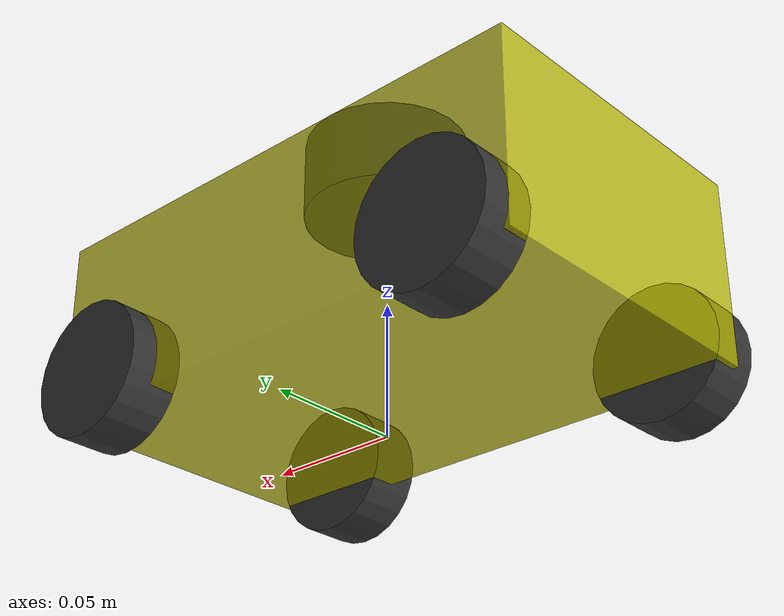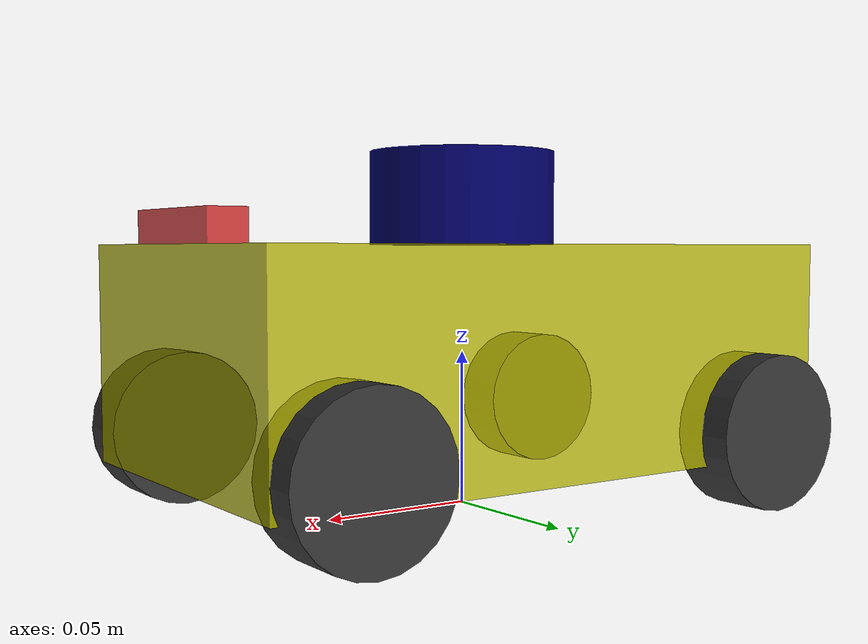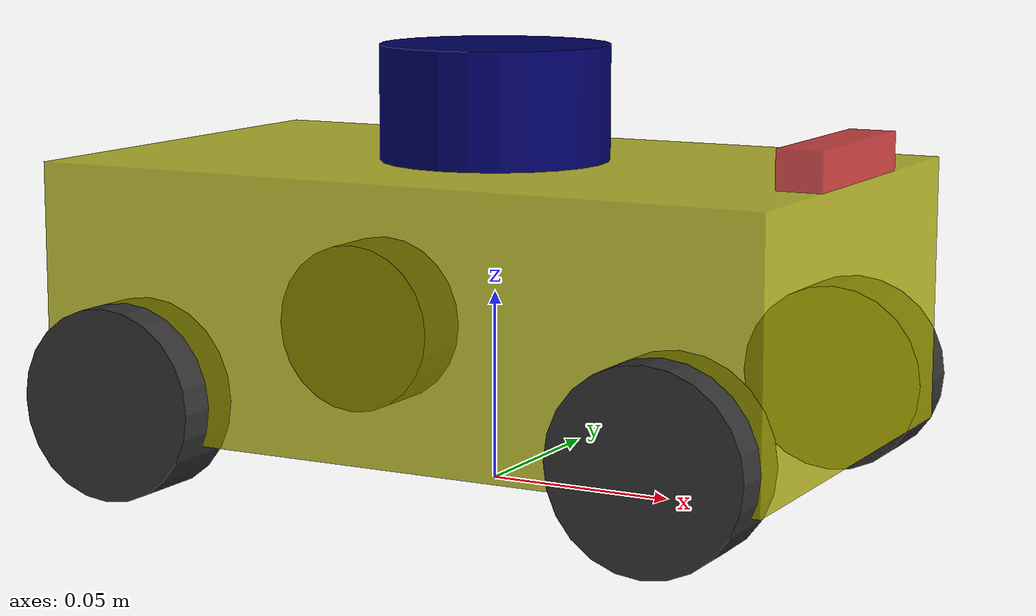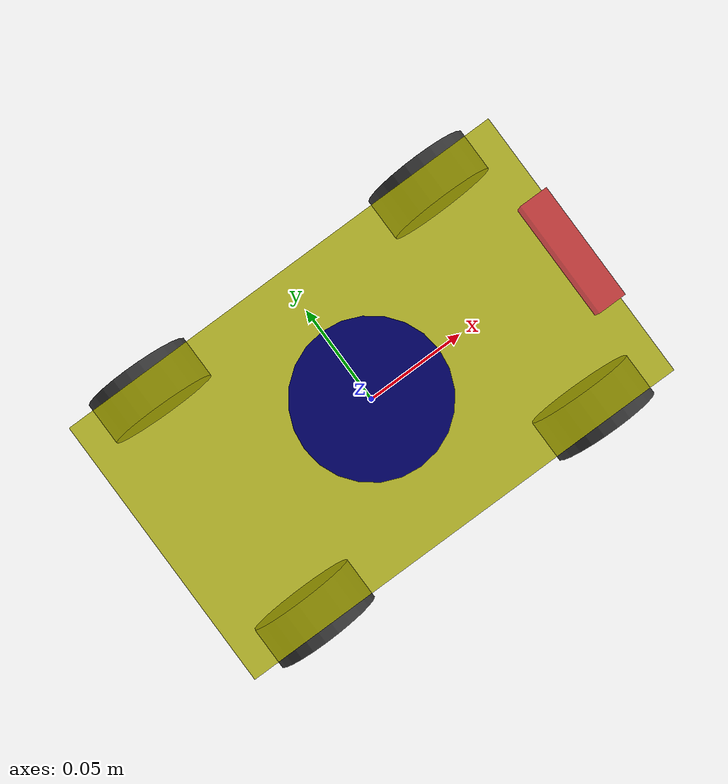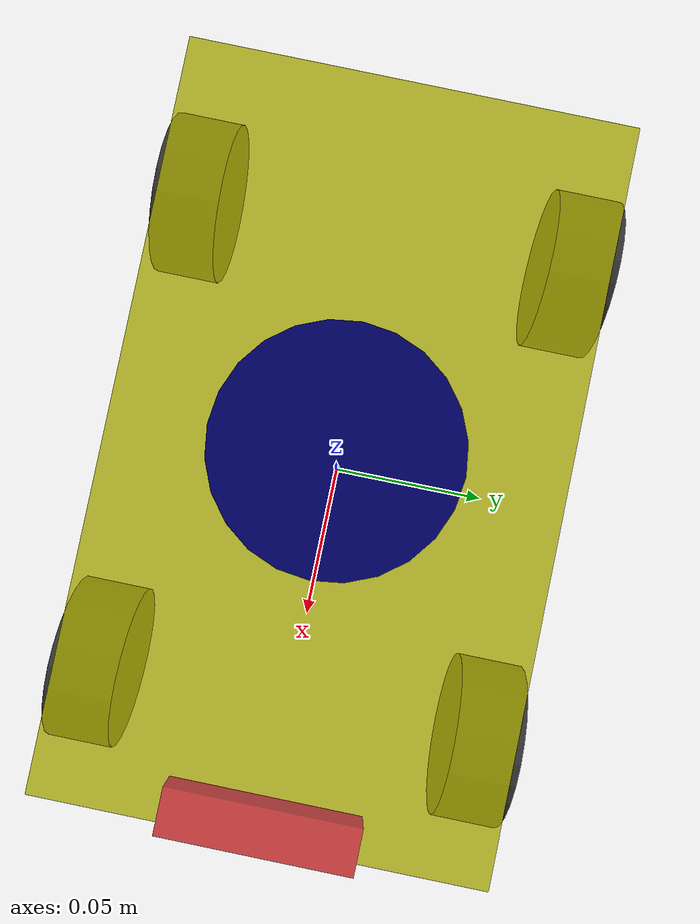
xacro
<robot name="car" xmlns:xacro="http://wiki.ros.org/xacro">
    <xacro:include filename="car_base.urdf.xacro"/>
    <xacro:include filename="car_camera.urdf.xacro"/>
    <xacro:include filename="car_laser.urdf.xacro"/>
    <xacro:include filename="move_control.urdf.xacro"/>
    <xacro:include filename="gazebo_sensor.urdf.xacro"/>
</robot>

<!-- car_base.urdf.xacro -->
<robot xmlns:xacro="http://wiki.ros.org/xacro">
    <!-- PI 值 -->
    <xacro:property name="PI" value="3.1416"/>
    <!-- 定义车辆参数 -->
    <!-- 车体长宽高 -->
    <xacro:property name="base_link_x" value="0.2"/>
    <xacro:property name="base_link_y" value="0.12"/>
    <xacro:property name="base_link_z" value="0.07"/>
    <!-- 离地间距 -->
    <xacro:property name="distance" value="0.015"/>
    <!-- 车轮半径 宽度 -->
    <xacro:property name="wheel_radius" value="0.025"/>
    <xacro:property name="wheel_length" value="0.02"/>

    <!-- Codex 新增开始：Gazebo 物理参数，用于给 link 生成 inertial -->
    <xacro:property name="base_link_mass" value="1.0"/>
    <xacro:property name="wheel_mass" value="0.05"/>
    <xacro:property name="wheel_mu1" value="1.0"/>
    <xacro:property name="wheel_mu2" value="0.05"/>
    <!-- Codex 新增结束：Gazebo 物理参数 -->

    <!-- Codex 新增开始：长方体惯性宏，给 base_link 使用 -->
    <xacro:macro name="box_inertial" params="mass x y z">
        <inertial>
            <mass value="${mass}"/>
            <inertia
                ixx="${mass / 12.0 * (y * y + z * z)}" ixy="0.0" ixz="0.0"
                iyy="${mass / 12.0 * (x * x + z * z)}" iyz="0.0"
                izz="${mass / 12.0 * (x * x + y * y)}"/>
        </inertial>
    </xacro:macro>
    <!-- Codex 新增结束：长方体惯性宏 -->

    <!-- Codex 新增开始：圆柱车轮惯性宏，给四个轮子使用 -->
    <xacro:macro name="wheel_inertial" params="mass radius length">
        <inertial>
            <mass value="${mass}"/>
            <inertia
                ixx="${mass / 12.0 * (3.0 * radius * radius + length * length)}" ixy="0.0" ixz="0.0"
                iyy="${mass / 2.0 * radius * radius}" iyz="0.0"
                izz="${mass / 12.0 * (3.0 * radius * radius + length * length)}"/>
        </inertial>
    </xacro:macro>
    <!-- Codex 新增结束：圆柱车轮惯性宏 -->

    <!-- 定义颜色 -->
    <material name="yellow">
        <color rgba="0.7 0.7 0 0.8" />
    </material>
    <material name="red">
        <color rgba="0.8 0.1 0.1 0.8" />
    </material>
    <material name="gray">
        <color rgba="0.2 0.2 0.2 0.95" />
      </material>

    <!-- 定义 base_footprint -->
    <link name="base_footprint">
    </link>

    <!-- 定义 base_link -->
    <link name="base_link">
        <visual>
            <!-- 形状 -->
            <geometry>
                <box size="${base_link_x} ${base_link_y} ${base_link_z}" />
            </geometry>
            <origin xyz="0 0 0" rpy="0 0 0" />
            <material name="yellow"/>
        </visual>
        <!-- Codex 新增开始：base_link 碰撞体，Gazebo 物理仿真需要 collision -->
        <collision>
            <geometry>
                <box size="${base_link_x} ${base_link_y} ${base_link_z}" />
            </geometry>
            <origin xyz="0 0 0" rpy="0 0 0" />
        </collision>
        <!-- Codex 新增结束：base_link 碰撞体 -->
        <!-- Codex 新增：base_link 惯性，Gazebo 物理仿真需要 inertial -->
        <xacro:box_inertial mass="${base_link_mass}" x="${base_link_x}" y="${base_link_y}" z="${base_link_z}"/>
    </link>
    <joint name="baselink2basefootprint" type="fixed">
        <parent link="base_footprint"/>
        <child link="base_link"/>
        <origin xyz="0.0 0.0 ${distance + base_link_z / 2}"/>
    </joint>
    <!-- 车轮宏定义 -->
    <xacro:macro name="wheel_func" params="wheel_name is_front is_left" >
        <link name="${wheel_name}_wheel">
            <visual>
                <geometry>
                    <cylinder radius="${wheel_radius}" length="${wheel_length}" />
                </geometry>
                <origin xyz="0 0 0" rpy="${PI / 2} 0 0" />
                <material name="gray"/>
            </visual>
            <!-- Codex 新增开始：车轮碰撞体，四个轮子都会通过这个宏生成 -->
            <collision>
                <geometry>
                    <cylinder radius="${wheel_radius}" length="${wheel_length}" />
                </geometry>
                <origin xyz="0 0 0" rpy="${PI / 2} 0 0" />
            </collision>
            <!-- Codex 新增结束：车轮碰撞体 -->
            <!-- Codex 新增：车轮惯性，四个轮子都会通过这个宏生成 -->
            <xacro:wheel_inertial mass="${wheel_mass}" radius="${wheel_radius}" length="${wheel_length}"/>
        </link>
        <joint name="${wheel_name}2baselink" type="continuous">
            <parent link="base_link"  />
            <child link="${wheel_name}_wheel" />
            <origin xyz="${(base_link_x / 2 - wheel_radius) * is_front} ${base_link_y / 2 * is_left} ${(base_link_z / 2 + distance - wheel_radius) * -1}" rpy="0 0 0" />
            <axis xyz="0 1 0" />
        </joint>
        <!-- Codex 新增：四轮差速原地转弯需要轮胎横向滑移；降低 mu2 可以减少 Gazebo 中的卡顿和抖动 -->
        <gazebo reference="${wheel_name}_wheel">
            <mu1>${wheel_mu1}</mu1>
            <mu2>${wheel_mu2}</mu2>
            <fdir1>1 0 0</fdir1>
        </gazebo>
    </xacro:macro>
    <!-- 车轮宏调用 -->
    <xacro:wheel_func wheel_name="left_front" is_front="1" is_left="1" />
    <xacro:wheel_func wheel_name="left_back" is_front="-1" is_left="1" />
    <xacro:wheel_func wheel_name="right_front" is_front="1" is_left="-1" />
    <xacro:wheel_func wheel_name="right_back" is_front="-1" is_left="-1" />
</robot>

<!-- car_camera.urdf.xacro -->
<!-- 摄像头相关的 xacro 文件 -->
<robot xmlns:xacro="http://wiki.ros.org/xacro">
    <!-- 摄像头属性 -->
    <xacro:property name="camera_x" value="0.012" /> <!-- 摄像头长度(x) -->
    <xacro:property name="camera_y" value="0.05" /> <!-- 摄像头宽度(y) -->
    <xacro:property name="camera_z" value="0.01" /> <!-- 摄像头高度(z) -->
    <xacro:property name="camera_joint_x" value="${base_link_x / 2 - camera_x / 2}" /> <!-- 摄像头安装的x坐标 -->
    <xacro:property name="camera_joint_y" value="0.0" /> <!-- 摄像头安装的y坐标 -->
    <xacro:property name="camera_joint_z" value="${base_link_z / 2 + camera_z / 2}" /> <!-- 摄像头安装的z坐标:底盘高度 / 2 + 摄像头高度 / 2  -->

    <!-- 摄像头关节以及link -->
    <link name="camera">
        <visual>
            <geometry>
                <box size="${camera_x} ${camera_y} ${camera_z}" />
            </geometry>
            <origin xyz="0.0 0.0 0.0" rpy="0.0 0.0 0.0" />
            <material name="red" />
        </visual>
    </link>

    <joint name="camera2baselink" type="fixed">
        <parent link="base_link" />
        <child link="camera" />
        <origin xyz="${camera_joint_x} ${camera_joint_y} ${camera_joint_z}" />
    </joint>
</robot>

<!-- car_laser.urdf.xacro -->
<!--
    小车底盘添加雷达
-->
<robot xmlns:xacro="http://wiki.ros.org/xacro">

    <material name="blue">
        <color rgba="0.0 0.0 0.4 0.95" />
    </material>

    <!-- 雷达属性 -->
    <xacro:property name="laser_length" value="0.03" /> <!-- 雷达长度 -->
    <xacro:property name="laser_radius" value="0.03" /> <!-- 雷达半径 -->
    <xacro:property name="laser_joint_x" value="0.0" /> <!-- 雷达安装的x坐标 -->
    <xacro:property name="laser_joint_y" value="0.0" /> <!-- 雷达安装的y坐标 -->
    <xacro:property name="laser_joint_z" value="${base_link_z / 2 + laser_length / 2}" /> <!-- 雷达安装的z坐标:车体高度 / 2 + 雷达高度 / 2  -->

    <!-- 雷达关节以及link -->
    <link name="laser">
        <visual>
            <geometry>
                <cylinder radius="${laser_radius}" length="${laser_length}" />
            </geometry>
            <origin xyz="0.0 0.0 0.0" rpy="0.0 0.0 0.0" />
            <material name="blue" />
        </visual>
    </link>

    <joint name="laser2baselink" type="fixed">
        <parent link="base_link" />
        <child link="laser" />
        <origin xyz="${laser_joint_x} ${laser_joint_y} ${laser_joint_z}" />
    </joint>
</robot>
